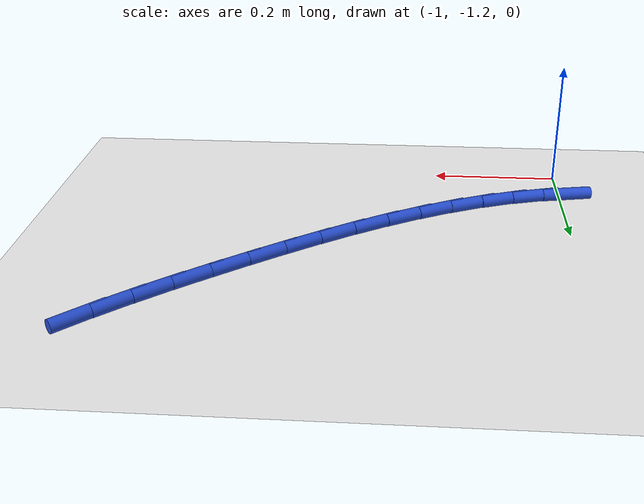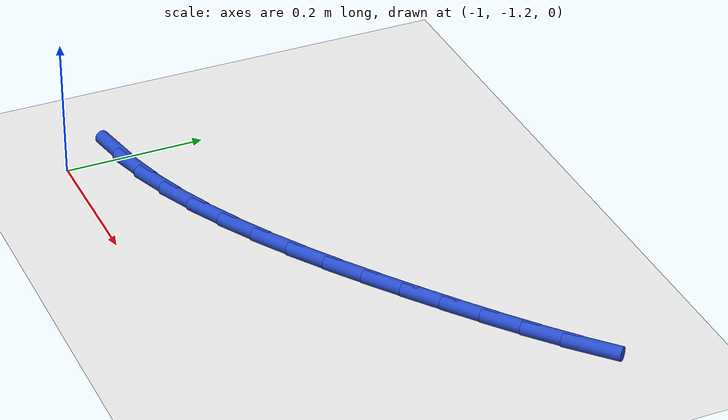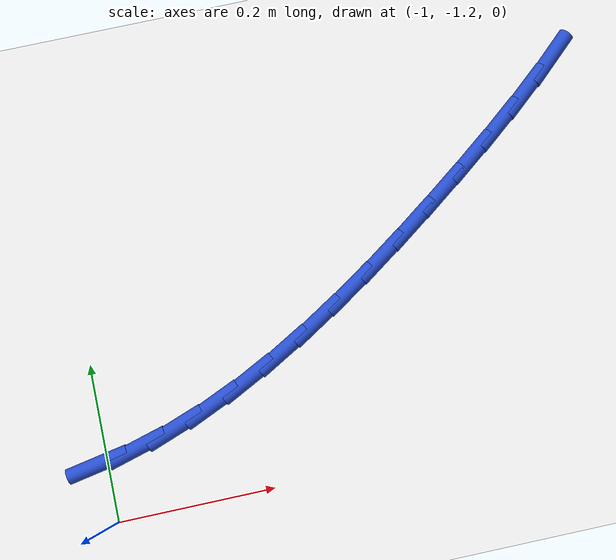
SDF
<sdf version="1.6">
 <world name="default">
  <model name="ground_plane">
   <static>1</static>
   <link name="link">
    <collision name="collision">
     <geometry><plane><normal>0 0 1</normal><size>100 100</size></plane></geometry>
     <surface><friction><ode><mu>100</mu><mu2>50</mu2></ode></friction></surface>
    </collision>
    <visual name="visual">
     <cast_shadows>0</cast_shadows>
     <geometry><plane><normal>0 0 1</normal><size>100 100</size></plane></geometry>
     <material>
      <script><uri>file://media/materials/scripts/gazebo.material</uri><name>Gazebo/WhiteGlow</name></script>
     </material>
    </visual>
   </link>
  </model>
  <model name="line">
   <link name="link_91">
    <pose>-1.0103199982018507 -1.124317371715116 0.01 0 1.57 0.18650173933727435</pose>
    <collision name="collision">
     <geometry><cylinder><radius>0.01</radius><length>0.08</length></cylinder></geometry>
    </collision>
    <visual name="visual">
     <material>
      <script><name>Gazebo/Blue</name><uri>file://media/materials/scripts/gazebo.material</uri></script>
     </material>
     <geometry><cylinder><radius>0.01</radius><length>0.08</length></cylinder></geometry>
    </visual>
   </link>
   <link name="link_92">
    <pose>-0.9587028622884399 -1.1145774963219013 0.01 0 1.57 0.2732368396460946</pose>
    <collision name="collision">
     <geometry><cylinder><radius>0.01</radius><length>0.08</length></cylinder></geometry>
    </collision>
    <visual name="visual">
     <material>
      <script><name>Gazebo/Blue</name><uri>file://media/materials/scripts/gazebo.material</uri></script>
     </material>
     <geometry><cylinder><radius>0.01</radius><length>0.08</length></cylinder></geometry>
    </visual>
   </link>
   <link name="link_93">
    <pose>-0.9072178454644922 -1.1001490243310301 0.01 0 1.57 0.3486290632171488</pose>
    <collision name="collision">
     <geometry><cylinder><radius>0.01</radius><length>0.08</length></cylinder></geometry>
    </collision>
    <visual name="visual">
     <material>
      <script><name>Gazebo/Blue</name><uri>file://media/materials/scripts/gazebo.material</uri></script>
     </material>
     <geometry><cylinder><radius>0.01</radius><length>0.08</length></cylinder></geometry>
    </visual>
   </link>
   <link name="link_94">
    <pose>-0.855952712899841 -1.0815153963043835 0.01 0 1.57 0.41342207620014215</pose>
    <collision name="collision">
     <geometry><cylinder><radius>0.01</radius><length>0.08</length></cylinder></geometry>
    </collision>
    <visual name="visual">
     <material>
      <script><name>Gazebo/Blue</name><uri>file://media/materials/scripts/gazebo.material</uri></script>
     </material>
     <geometry><cylinder><radius>0.01</radius><length>0.08</length></cylinder></geometry>
    </visual>
   </link>
   <link name="link_95">
    <pose>-0.8049952297643159 -1.0591600528038405 0.01 0 1.57 0.4685811182320082</pose>
    <collision name="collision">
     <geometry><cylinder><radius>0.01</radius><length>0.08</length></cylinder></geometry>
    </collision>
    <visual name="visual">
     <material>
      <script><name>Gazebo/Blue</name><uri>file://media/materials/scripts/gazebo.material</uri></script>
     </material>
     <geometry><cylinder><radius>0.01</radius><length>0.08</length></cylinder></geometry>
    </visual>
   </link>
   <link name="link_96">
    <pose>-0.7544331612277482 -1.033566434391281 0.01 0 1.57 0.5151017311278199</pose>
    <collision name="collision">
     <geometry><cylinder><radius>0.01</radius><length>0.08</length></cylinder></geometry>
    </collision>
    <visual name="visual">
     <material>
      <script><name>Gazebo/Blue</name><uri>file://media/materials/scripts/gazebo.material</uri></script>
     </material>
     <geometry><cylinder><radius>0.01</radius><length>0.08</length></cylinder></geometry>
    </visual>
   </link>
   <link name="link_97">
    <pose>-0.7043542724599701 -1.0052179816285853 0.01 0 1.57 0.5538995654445045</pose>
    <collision name="collision">
     <geometry><cylinder><radius>0.01</radius><length>0.08</length></cylinder></geometry>
    </collision>
    <visual name="visual">
     <material>
      <script><name>Gazebo/Blue</name><uri>file://media/materials/scripts/gazebo.material</uri></script>
     </material>
     <geometry><cylinder><radius>0.01</radius><length>0.08</length></cylinder></geometry>
    </visual>
   </link>
   <link name="link_98">
    <pose>-0.654846328630812 -0.9745981350776329 0.01 0 1.57 0.5857549696971192</pose>
    <collision name="collision">
     <geometry><cylinder><radius>0.01</radius><length>0.08</length></cylinder></geometry>
    </collision>
    <visual name="visual">
     <material>
      <script><name>Gazebo/Blue</name><uri>file://media/materials/scripts/gazebo.material</uri></script>
     </material>
     <geometry><cylinder><radius>0.01</radius><length>0.08</length></cylinder></geometry>
    </visual>
   </link>
   <link name="link_99">
    <pose>-0.6059970949101056 -0.9421903353003039 0.01 0 1.57 0.6112891547973107</pose>
    <collision name="collision">
     <geometry><cylinder><radius>0.01</radius><length>0.08</length></cylinder></geometry>
    </collision>
    <visual name="visual">
     <material>
      <script><name>Gazebo/Blue</name><uri>file://media/materials/scripts/gazebo.material</uri></script>
     </material>
     <geometry><cylinder><radius>0.01</radius><length>0.08</length></cylinder></geometry>
    </visual>
   </link>
   <link name="link_100">
    <pose>-0.557894336467681 -0.9084780228584778 0.01 0 1.57 0.6309553400582331</pose>
    <collision name="collision">
     <geometry><cylinder><radius>0.01</radius><length>0.08</length></cylinder></geometry>
    </collision>
    <visual name="visual">
     <material>
      <script><name>Gazebo/Blue</name><uri>file://media/materials/scripts/gazebo.material</uri></script>
     </material>
     <geometry><cylinder><radius>0.01</radius><length>0.08</length></cylinder></geometry>
    </visual>
   </link>
   <link name="link_101">
    <pose>-0.5106258184733712 -0.873944638314035 0.01 0 1.57 0.6458708835642661</pose>
    <collision name="collision">
     <geometry><cylinder><radius>0.01</radius><length>0.08</length></cylinder></geometry>
    </collision>
    <visual name="visual">
     <material>
      <script><name>Gazebo/Blue</name><uri>file://media/materials/scripts/gazebo.material</uri></script>
     </material>
     <geometry><cylinder><radius>0.01</radius><length>0.08</length></cylinder></geometry>
    </visual>
   </link>
   <link name="link_102">
    <pose>-0.4642892749891727 -0.8390203511865169 0.01 0 1.57 0.6629603555155927</pose>
    <collision name="collision">
     <geometry><cylinder><radius>0.01</radius><length>0.08</length></cylinder></geometry>
    </collision>
    <visual name="visual">
     <material>
      <script><name>Gazebo/Blue</name><uri>file://media/materials/scripts/gazebo.material</uri></script>
     </material>
     <geometry><cylinder><radius>0.01</radius><length>0.08</length></cylinder></geometry>
    </visual>
   </link>
   <link name="link_103">
    <pose>-0.41906297533039605 -0.8037049725546777 0.01 0 1.57 0.6856976949220053</pose>
    <collision name="collision">
     <geometry><cylinder><radius>0.01</radius><length>0.08</length></cylinder></geometry>
    </collision>
    <visual name="visual">
     <material>
      <script><name>Gazebo/Blue</name><uri>file://media/materials/scripts/gazebo.material</uri></script>
     </material>
     <geometry><cylinder><radius>0.01</radius><length>0.08</length></cylinder></geometry>
    </visual>
   </link>
   <link name="link_104">
    <pose>-0.37516415521058233 -0.7677900876868846 0.01 0 1.57 0.7143265390192981</pose>
    <collision name="collision">
     <geometry><cylinder><radius>0.01</radius><length>0.08</length></cylinder></geometry>
    </collision>
    <visual name="visual">
     <material>
      <script><name>Gazebo/Blue</name><uri>file://media/materials/scripts/gazebo.material</uri></script>
     </material>
     <geometry><cylinder><radius>0.01</radius><length>0.08</length></cylinder></geometry>
    </visual>
   </link>
   <link name="link_105">
    <pose>-0.33281030476123213 -0.7310659223112906 0.01 0 1.57 0.7490551423037018</pose>
    <collision name="collision">
     <geometry><cylinder><radius>0.01</radius><length>0.08</length></cylinder></geometry>
    </collision>
    <visual name="visual">
     <material>
      <script><name>Gazebo/Blue</name><uri>file://media/materials/scripts/gazebo.material</uri></script>
     </material>
     <geometry><cylinder><radius>0.01</radius><length>0.08</length></cylinder></geometry>
    </visual>
   </link>
  </model>
 </world>
</sdf>
